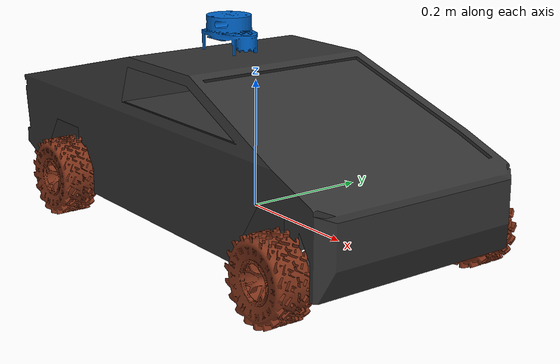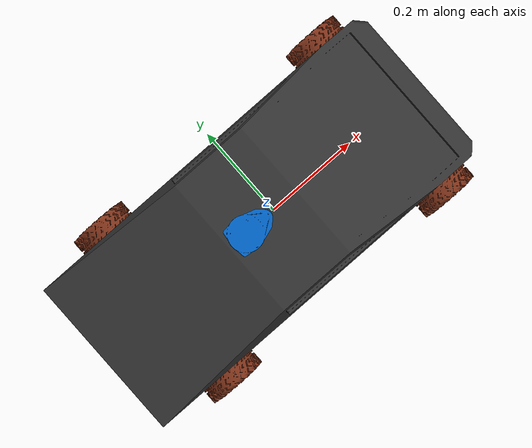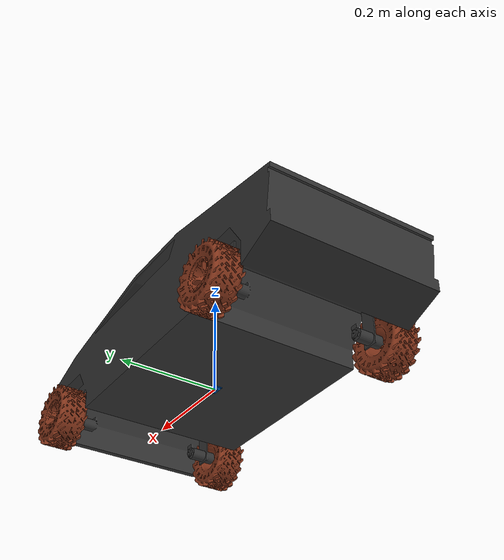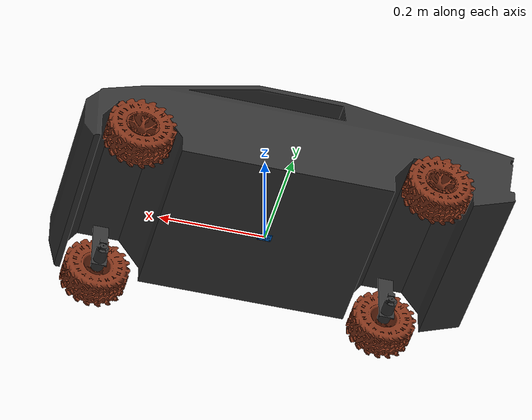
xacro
<?xml version="1.0"?>
<robot name="amr_description" xmlns:xacro="http://www.ros.org/wiki/xacro">

  <!-- MATERIALS                                                     -->
  <material name="dark_gray">
    <color rgba="0.2 0.2 0.2 1.0"/>
  </material>
  <material name="light_gray">
    <color rgba="0.7 0.7 0.7 1.0"/>
  </material>
  <material name="blue">
    <color rgba="0.0 0.4 0.8 1.0"/>
  </material>

  <!-- BASE LINK                                                     -->
  <link name="base_link">
    <inertial>
      <origin xyz="0 0 0" rpy="0 0 0"/>
      <mass value="8.0"/>
      <inertia ixx="0.1705" ixy="0"      ixz="0"
               iyy="0.4671"  iyz="0"
               izz="0.5718"/>
    </inertial>
    <visual>
      <origin xyz="0 0 0" rpy="0 0 0"/>
      <geometry>
        <mesh filename="package://amr_description/meshes/Base_Link.STL"/>
      </geometry>
      <material name="dark_gray"/>
    </visual>
    <collision>
      <origin xyz="0 0 0" rpy="0 0 0"/>
      <geometry>
        <mesh filename="package://amr_description/meshes/Base_Link.STL"/>
      </geometry>
    </collision>
  </link>

  <gazebo reference="base_link">
    <material>Gazebo/DarkGrey</material>
  </gazebo>

  <!-- FRONT LEFT WHEEL                                             -->
  <link name="front_left_wheel">
    <inertial>
      <origin xyz="0.0 0.0 0.0" rpy="0.0 0.0 0.0"/>
      <mass value="0.17"/>
      <inertia ixx="0.000215" ixy="0.0" ixz="0.0"
               iyy="0.000215" iyz="0.0"
               izz="0.000359"/>
    </inertial>
    <visual name="">
      <origin xyz="0.0 0.0 0.0" rpy="0.0 0.0 0.0"/>
      <geometry>
        <mesh filename="package://amr_description/meshes/Front_Left_Wheel.STL"/>
      </geometry>
      <material name="">
        <color rgba="0.5 0.2 0.1 1.0"/>
        <texture filename=""/>
      </material>
    </visual>
    <collision>
      <origin xyz="0.0 0.0 0.0" rpy="0.0 0.0 0.0"/>
      <geometry>
        <cylinder radius="0.065" length="0.05"/>
      </geometry>
    </collision>
  </link>

  <joint name="front_left_wheel_joint" type="continuous">
    <parent link="base_link"/>
    <child link="front_left_wheel"/>
    <origin xyz="0.28082 0.18564 0.012464" rpy="1.5708 0 3.1416"/>
    <axis xyz="0 0 1"/>
    <dynamics damping="0.1" friction="0.5"/>
  </joint>

  <gazebo reference="front_left_wheel">
    <collision>
      <surface>
        <friction>
          <ode>
            <mu>2.0</mu>
            <mu2>0.7</mu2>
            <fdir1>1 0 0</fdir1>
            <slip1>0.0</slip1>
            <slip2>0.0</slip2>
          </ode>
        </friction>
        <contact>
          <ode>
            <kp>1e8</kp>
            <kd>50.0</kd>
          </ode>
        </contact>
      </surface>
    </collision>
  </gazebo>

  <!-- FRONT RIGHT WHEEL                                            -->
  <!--
    Same mass and inertia as front left wheel (symmetric).
    Same friction parameters applied.
  -->
  <link name="front_right_wheel">
    <inertial>
      <origin xyz="0.0 0.0 0.0" rpy="0.0 0.0 0.0"/>
      <mass value="0.17"/>
      <inertia ixx="0.000215" ixy="0.0" ixz="0.0"
               iyy="0.000215" iyz="0.0"
               izz="0.000359"/>
    </inertial>
    <visual name="">
      <origin xyz="0.0 0.0 0.0" rpy="0.0 0.0 0.0"/>
      <geometry>
        <mesh filename="package://amr_description/meshes/Front_Right_Wheel.STL"/>
      </geometry>
      <material name="">
        <color rgba="0.5 0.2 0.1 1.0"/>
        <texture filename=""/>
      </material>
    </visual>
    <collision>
      <origin xyz="0.0 0.0 0.0" rpy="0.0 0.0 0.0"/>
      <geometry>
        <cylinder radius="0.065" length="0.05"/>
      </geometry>
    </collision>
  </link>

  <joint name="front_right_wheel_joint" type="continuous">
    <parent link="base_link"/>
    <child link="front_right_wheel"/>
    <origin xyz="0.28082 -0.18564 0.012464" rpy="-1.5708 0 -3.1416"/>
    <axis xyz="0 0 -1"/>
    <dynamics damping="0.1" friction="0.5"/>
  </joint>

  <gazebo reference="front_right_wheel">
    <collision>
      <surface>
        <friction>
          <ode>
            <mu>2.0</mu>
            <mu2>0.7</mu2>
            <fdir1>1 0 0</fdir1>
            <slip1>0.0</slip1>
            <slip2>0.0</slip2>
          </ode>
        </friction>
        <contact>
          <ode>
            <kp>1e8</kp>
            <kd>50.0</kd>
          </ode>
        </contact>
      </surface>
    </collision>
  </gazebo>

  <!-- BACK LEFT WHEEL                                              -->
  <!--
    Same mass and inertia as front wheels (all four wheels identical).
    Same friction parameters applied.
  -->
  <link name="back_left_wheel">
    <inertial>
      <origin xyz="0.0 0.0 0.0" rpy="0.0 0.0 0.0"/>
      <mass value="0.17"/>
      <inertia ixx="0.000215" ixy="0.0" ixz="0.0"
               iyy="0.000215" iyz="0.0"
               izz="0.000359"/>
    </inertial>
    <visual name="">
      <origin xyz="0.0 0.0 0.0" rpy="0.0 0.0 0.0"/>
      <geometry>
        <mesh filename="package://amr_description/meshes/Back_Left_Wheel.STL"/>
      </geometry>
      <material name="">
        <color rgba="0.5 0.2 0.1 1.0"/>
        <texture filename=""/>
      </material>
    </visual>
    <collision>
      <origin xyz="0.0 0.0 0.0" rpy="0.0 0.0 0.0"/>
      <geometry>
        <cylinder radius="0.065" length="0.05"/>
      </geometry>
    </collision>
  </link>

  <joint name="back_left_wheel_joint" type="continuous">
    <parent link="base_link"/>
    <child link="back_left_wheel"/>
    <origin xyz="-0.2789 0.18564 0.014811" rpy="1.5708 0 3.1416"/>
    <axis xyz="0 0 1"/>
    <dynamics damping="0.1" friction="0.5"/>
  </joint>

  <gazebo reference="back_left_wheel">
    <collision>
      <surface>
        <friction>
          <ode>
            <mu>2.0</mu>
            <mu2>0.7</mu2>
            <fdir1>1 0 0</fdir1>
            <slip1>0.0</slip1>
            <slip2>0.0</slip2>
          </ode>
        </friction>
        <contact>
          <ode>
            <kp>1e8</kp>
            <kd>50.0</kd>
          </ode>
        </contact>
      </surface>
    </collision>
  </gazebo>

  <!-- BACK RIGHT WHEEL                                             -->
  <!--
    Same mass and inertia as other wheels.
    rpy kept as "-1.5708 0 -3.1416" (corrected from SW inconsistency,
    same as front_right to keep both right wheels consistent).
  -->
  <link name="back_right_wheel">
    <inertial>
      <origin xyz="0.0 0.0 0.0" rpy="0.0 0.0 0.0"/>
      <mass value="0.17"/>
      <inertia ixx="0.000215" ixy="0.0" ixz="0.0"
               iyy="0.000215" iyz="0.0"
               izz="0.000359"/>
    </inertial>
    <visual name="">
      <origin xyz="0.0 0.0 0.0" rpy="0.0 0.0 0.0"/>
      <geometry>
        <mesh filename="package://amr_description/meshes/Back_Right_Wheel.STL"/>
      </geometry>
      <material name="">
        <color rgba="0.5 0.2 0.1 1.0"/>
        <texture filename=""/>
      </material>
    </visual>
    <collision>
      <origin xyz="0.0 0.0 0.0" rpy="0.0 0.0 0.0"/>
      <geometry>
        <cylinder radius="0.065" length="0.05"/>
      </geometry>
    </collision>
  </link>

  <joint name="back_right_wheel_joint" type="continuous">
    <parent link="base_link"/>
    <child link="back_right_wheel"/>
    <origin xyz="-0.2789 -0.18564 0.014811" rpy="-1.5708 0 -3.1416"/>
    <axis xyz="0 0 -1"/>
    <dynamics damping="0.1" friction="0.5"/>
  </joint>

  <gazebo reference="back_right_wheel">
    <collision>
      <surface>
        <friction>
          <ode>
            <mu>2.0</mu>
            <mu2>0.7</mu2>
            <fdir1>1 0 0</fdir1>
            <slip1>0.0</slip1>
            <slip2>0.0</slip2>
          </ode>
        </friction>
        <contact>
          <ode>
            <kp>1e8</kp>
            <kd>50.0</kd>
          </ode>
        </contact>
      </surface>
    </collision>
  </gazebo>

  <!-- LIDAR                                                        -->
  <link name="lidar_link">
    <inertial>
      <mass value="0.142"/>
      <origin xyz="0 0 0"/>
      <inertia ixx="5.69e-05" ixy="0" ixz="0"
               iyy="8.93e-05" iyz="0"
               izz="1.09e-04"/>
    </inertial>
    <visual>
      <origin xyz="0 0 0" rpy="0 0 0"/>
      <geometry>
        <mesh filename="package://amr_description/meshes/Laser.STL"/>
      </geometry>
      <material name="blue"/>
    </visual>
    <collision>
      <geometry>
        <cylinder radius="0.038" length="0.041"/>
      </geometry>
    </collision>
  </link>

  <joint name="lidar_joint" type="fixed">
    <parent link="base_link"/>
    <child link="lidar_link"/>
    <origin xyz="-0.057 0 0.2608" rpy="0 0 0"/>
  </joint>

  <!-- Gazebo Harmonic 2D lidar plugin (360 degrees) -->
  <gazebo reference="lidar_link">
    <sensor name="lidar_sensor" type="gpu_lidar">
      <topic>scan</topic>
      <update_rate>10</update_rate>
      <always_on>true</always_on>
      <visualize>true</visualize>
      <lidar>
        <scan>
          <horizontal>
            <samples>360</samples>
            <resolution>1</resolution>
            <min_angle>-3.14159</min_angle>
            <max_angle>3.14159</max_angle>
          </horizontal>
        </scan>
        <range>
          <min>0.12</min>
          <max>8.0</max>
          <resolution>0.01</resolution>
        </range>
        <noise>
          <type>gaussian</type>
          <mean>0.0</mean>
          <stddev>0.01</stddev>
        </noise>
      </lidar>
      <gz_frame_id>lidar_link</gz_frame_id>
    </sensor>
  </gazebo>

  <!-- IMU                                                          -->
  <!--
    Link name kept as imu_link (not IMU_Link) to match bridge config.
    Inertia unchanged (mass unchanged).
  -->
  <link name="imu_link">
    <inertial>
      <mass value="0.001"/>
      <origin xyz="0 0 0"/>
      <inertia ixx="1e-6" ixy="0" ixz="0"
               iyy="1e-6" iyz="0"
               izz="1e-6"/>
    </inertial>
    <visual>
      <origin xyz="0 0 0" rpy="0 0 0"/>
      <geometry>
        <mesh filename="package://amr_description/meshes/IMU_Link.STL"/>
      </geometry>
      <material name="blue"/>
    </visual>
    <collision>
      <geometry>
        <box size="0.03 0.03 0.01"/>
      </geometry>
    </collision>
  </link>

  <joint name="imu_joint" type="fixed">
    <parent link="base_link"/>
    <child link="imu_link"/>
    <origin xyz="0 0 0" rpy="0 0 0"/>
  </joint>

  <!-- Gazebo Harmonic IMU plugin -->
  <gazebo reference="imu_link">
    <sensor name="imu_sensor" type="imu">
      <topic>imu</topic>
      <update_rate>10</update_rate>
      <always_on>true</always_on>
      <imu>
        <angular_velocity>
          <x><noise type="gaussian"><mean>0</mean><stddev>0.009</stddev></noise></x>
          <y><noise type="gaussian"><mean>0</mean><stddev>0.009</stddev></noise></y>
          <z><noise type="gaussian"><mean>0</mean><stddev>0.009</stddev></noise></z>
        </angular_velocity>
        <linear_acceleration>
          <x><noise type="gaussian"><mean>0</mean><stddev>0.021</stddev></noise></x>
          <y><noise type="gaussian"><mean>0</mean><stddev>0.021</stddev></noise></y>
          <z><noise type="gaussian"><mean>0</mean><stddev>0.021</stddev></noise></z>
        </linear_acceleration>
      </imu>
      <gz_frame_id>imu_link</gz_frame_id>
    </sensor>
  </gazebo>

  <!-- ROS2 CONTROL — 4-wheel drive hardware interface              -->
  <ros2_control name="amr_system" type="system">
    <hardware>
      <plugin>gz_ros2_control/GazeboSimSystem</plugin>
    </hardware>

    <joint name="front_left_wheel_joint">
      <command_interface name="velocity">
        <param name="min">-10</param>
        <param name="max">10</param>
      </command_interface>
      <state_interface name="position"/>
      <state_interface name="velocity"/>
    </joint>

    <joint name="front_right_wheel_joint">
      <command_interface name="velocity">
        <param name="min">-10</param>
        <param name="max">10</param>
      </command_interface>
      <state_interface name="position"/>
      <state_interface name="velocity"/>
    </joint>

    <joint name="back_left_wheel_joint">
      <command_interface name="velocity">
        <param name="min">-10</param>
        <param name="max">10</param>
      </command_interface>
      <state_interface name="position"/>
      <state_interface name="velocity"/>
    </joint>

    <joint name="back_right_wheel_joint">
      <command_interface name="velocity">
        <param name="min">-10</param>
        <param name="max">10</param>
      </command_interface>
      <state_interface name="position"/>
      <state_interface name="velocity"/>
    </joint>
  </ros2_control>

  <!-- gz_ros2_control Gazebo plugin -->
  <gazebo>
    <plugin filename="gz_ros2_control-system"
            name="gz_ros2_control::GazeboSimROS2ControlPlugin">
      <parameters>$(find amr_description)/config/controllers.yaml</parameters>
      <ros>
        <namespace>/</namespace>
      </ros>
    </plugin>
  </gazebo>

</robot>
